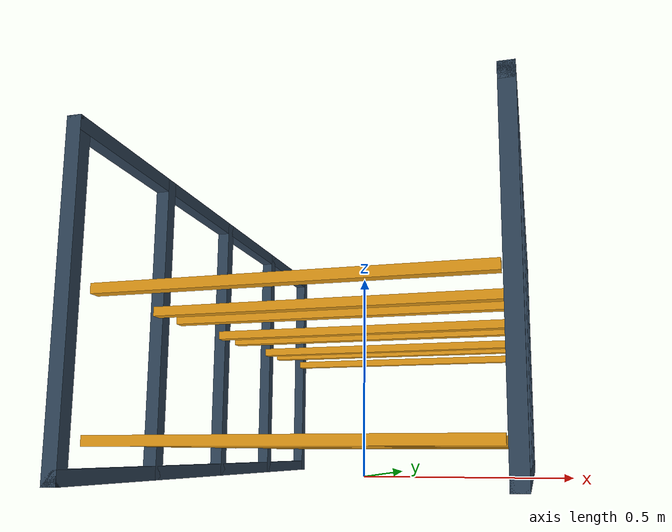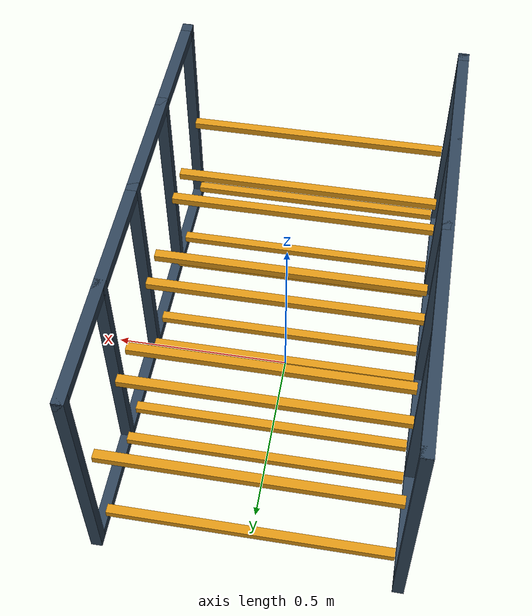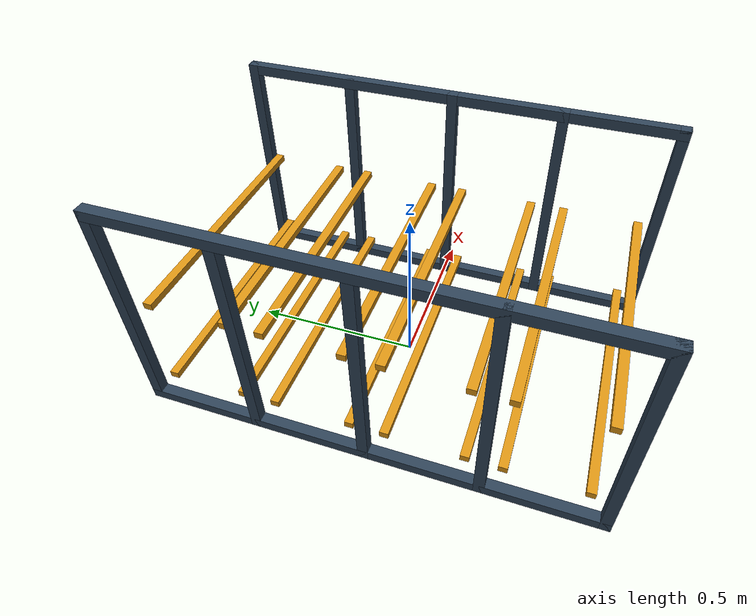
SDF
<?xml version='1.0' encoding='utf-8'?>
<sdf version="1.9">
  <model name="warehouse_rack_4x2_double">
    <static>true</static>
    <link name="rack_frame">
      <collision name="front_post_1_collision">
        <pose>-0.3950 -0.6400 0.3400 0.0000 0.0000 0.0000</pose>
        <geometry>
          <box>
            <size>0.0300 0.0300 0.6800</size>
          </box>
        </geometry>
        <surface>
          <friction>
            <ode>
              <mu>0.8</mu>
              <mu2>0.8</mu2>
            </ode>
          </friction>
        </surface>
      </collision>
      <visual name="front_post_1_visual">
        <pose>-0.3950 -0.6400 0.3400 0.0000 0.0000 0.0000</pose>
        <geometry>
          <box>
            <size>0.0300 0.0300 0.6800</size>
          </box>
        </geometry>
        <material>
          <ambient>0.1800 0.2600 0.3400 1.0000</ambient>
          <diffuse>0.1800 0.2600 0.3400 1.0000</diffuse>
        </material>
      </visual>
      <collision name="rear_post_1_collision">
        <pose>0.3950 -0.6400 0.3400 0.0000 0.0000 0.0000</pose>
        <geometry>
          <box>
            <size>0.0300 0.0300 0.6800</size>
          </box>
        </geometry>
        <surface>
          <friction>
            <ode>
              <mu>0.8</mu>
              <mu2>0.8</mu2>
            </ode>
          </friction>
        </surface>
      </collision>
      <visual name="rear_post_1_visual">
        <pose>0.3950 -0.6400 0.3400 0.0000 0.0000 0.0000</pose>
        <geometry>
          <box>
            <size>0.0300 0.0300 0.6800</size>
          </box>
        </geometry>
        <material>
          <ambient>0.1800 0.2600 0.3400 1.0000</ambient>
          <diffuse>0.1800 0.2600 0.3400 1.0000</diffuse>
        </material>
      </visual>
      <collision name="front_post_2_collision">
        <pose>-0.3950 -0.3200 0.3400 0.0000 0.0000 0.0000</pose>
        <geometry>
          <box>
            <size>0.0300 0.0300 0.6800</size>
          </box>
        </geometry>
        <surface>
          <friction>
            <ode>
              <mu>0.8</mu>
              <mu2>0.8</mu2>
            </ode>
          </friction>
        </surface>
      </collision>
      <visual name="front_post_2_visual">
        <pose>-0.3950 -0.3200 0.3400 0.0000 0.0000 0.0000</pose>
        <geometry>
          <box>
            <size>0.0300 0.0300 0.6800</size>
          </box>
        </geometry>
        <material>
          <ambient>0.1800 0.2600 0.3400 1.0000</ambient>
          <diffuse>0.1800 0.2600 0.3400 1.0000</diffuse>
        </material>
      </visual>
      <collision name="rear_post_2_collision">
        <pose>0.3950 -0.3200 0.3400 0.0000 0.0000 0.0000</pose>
        <geometry>
          <box>
            <size>0.0300 0.0300 0.6800</size>
          </box>
        </geometry>
        <surface>
          <friction>
            <ode>
              <mu>0.8</mu>
              <mu2>0.8</mu2>
            </ode>
          </friction>
        </surface>
      </collision>
      <visual name="rear_post_2_visual">
        <pose>0.3950 -0.3200 0.3400 0.0000 0.0000 0.0000</pose>
        <geometry>
          <box>
            <size>0.0300 0.0300 0.6800</size>
          </box>
        </geometry>
        <material>
          <ambient>0.1800 0.2600 0.3400 1.0000</ambient>
          <diffuse>0.1800 0.2600 0.3400 1.0000</diffuse>
        </material>
      </visual>
      <collision name="front_post_3_collision">
        <pose>-0.3950 0.0000 0.3400 0.0000 0.0000 0.0000</pose>
        <geometry>
          <box>
            <size>0.0300 0.0300 0.6800</size>
          </box>
        </geometry>
        <surface>
          <friction>
            <ode>
              <mu>0.8</mu>
              <mu2>0.8</mu2>
            </ode>
          </friction>
        </surface>
      </collision>
      <visual name="front_post_3_visual">
        <pose>-0.3950 0.0000 0.3400 0.0000 0.0000 0.0000</pose>
        <geometry>
          <box>
            <size>0.0300 0.0300 0.6800</size>
          </box>
        </geometry>
        <material>
          <ambient>0.1800 0.2600 0.3400 1.0000</ambient>
          <diffuse>0.1800 0.2600 0.3400 1.0000</diffuse>
        </material>
      </visual>
      <collision name="rear_post_3_collision">
        <pose>0.3950 0.0000 0.3400 0.0000 0.0000 0.0000</pose>
        <geometry>
          <box>
            <size>0.0300 0.0300 0.6800</size>
          </box>
        </geometry>
        <surface>
          <friction>
            <ode>
              <mu>0.8</mu>
              <mu2>0.8</mu2>
            </ode>
          </friction>
        </surface>
      </collision>
      <visual name="rear_post_3_visual">
        <pose>0.3950 0.0000 0.3400 0.0000 0.0000 0.0000</pose>
        <geometry>
          <box>
            <size>0.0300 0.0300 0.6800</size>
          </box>
        </geometry>
        <material>
          <ambient>0.1800 0.2600 0.3400 1.0000</ambient>
          <diffuse>0.1800 0.2600 0.3400 1.0000</diffuse>
        </material>
      </visual>
      <collision name="front_post_4_collision">
        <pose>-0.3950 0.3200 0.3400 0.0000 0.0000 0.0000</pose>
        <geometry>
          <box>
            <size>0.0300 0.0300 0.6800</size>
          </box>
        </geometry>
        <surface>
          <friction>
            <ode>
              <mu>0.8</mu>
              <mu2>0.8</mu2>
            </ode>
          </friction>
        </surface>
      </collision>
      <visual name="front_post_4_visual">
        <pose>-0.3950 0.3200 0.3400 0.0000 0.0000 0.0000</pose>
        <geometry>
          <box>
            <size>0.0300 0.0300 0.6800</size>
          </box>
        </geometry>
        <material>
          <ambient>0.1800 0.2600 0.3400 1.0000</ambient>
          <diffuse>0.1800 0.2600 0.3400 1.0000</diffuse>
        </material>
      </visual>
      <collision name="rear_post_4_collision">
        <pose>0.3950 0.3200 0.3400 0.0000 0.0000 0.0000</pose>
        <geometry>
          <box>
            <size>0.0300 0.0300 0.6800</size>
          </box>
        </geometry>
        <surface>
          <friction>
            <ode>
              <mu>0.8</mu>
              <mu2>0.8</mu2>
            </ode>
          </friction>
        </surface>
      </collision>
      <visual name="rear_post_4_visual">
        <pose>0.3950 0.3200 0.3400 0.0000 0.0000 0.0000</pose>
        <geometry>
          <box>
            <size>0.0300 0.0300 0.6800</size>
          </box>
        </geometry>
        <material>
          <ambient>0.1800 0.2600 0.3400 1.0000</ambient>
          <diffuse>0.1800 0.2600 0.3400 1.0000</diffuse>
        </material>
      </visual>
      <collision name="front_post_5_collision">
        <pose>-0.3950 0.6400 0.3400 0.0000 0.0000 0.0000</pose>
        <geometry>
          <box>
            <size>0.0300 0.0300 0.6800</size>
          </box>
        </geometry>
        <surface>
          <friction>
            <ode>
              <mu>0.8</mu>
              <mu2>0.8</mu2>
            </ode>
          </friction>
        </surface>
      </collision>
      <visual name="front_post_5_visual">
        <pose>-0.3950 0.6400 0.3400 0.0000 0.0000 0.0000</pose>
        <geometry>
          <box>
            <size>0.0300 0.0300 0.6800</size>
          </box>
        </geometry>
        <material>
          <ambient>0.1800 0.2600 0.3400 1.0000</ambient>
          <diffuse>0.1800 0.2600 0.3400 1.0000</diffuse>
        </material>
      </visual>
      <collision name="rear_post_5_collision">
        <pose>0.3950 0.6400 0.3400 0.0000 0.0000 0.0000</pose>
        <geometry>
          <box>
            <size>0.0300 0.0300 0.6800</size>
          </box>
        </geometry>
        <surface>
          <friction>
            <ode>
              <mu>0.8</mu>
              <mu2>0.8</mu2>
            </ode>
          </friction>
        </surface>
      </collision>
      <visual name="rear_post_5_visual">
        <pose>0.3950 0.6400 0.3400 0.0000 0.0000 0.0000</pose>
        <geometry>
          <box>
            <size>0.0300 0.0300 0.6800</size>
          </box>
        </geometry>
        <material>
          <ambient>0.1800 0.2600 0.3400 1.0000</ambient>
          <diffuse>0.1800 0.2600 0.3400 1.0000</diffuse>
        </material>
      </visual>
      <collision name="front_bottom_crossbeam_collision">
        <pose>-0.3950 0.0000 0.0150 0.0000 0.0000 0.0000</pose>
        <geometry>
          <box>
            <size>0.0300 1.3100 0.0300</size>
          </box>
        </geometry>
        <surface>
          <friction>
            <ode>
              <mu>0.8</mu>
              <mu2>0.8</mu2>
            </ode>
          </friction>
        </surface>
      </collision>
      <visual name="front_bottom_crossbeam_visual">
        <pose>-0.3950 0.0000 0.0150 0.0000 0.0000 0.0000</pose>
        <geometry>
          <box>
            <size>0.0300 1.3100 0.0300</size>
          </box>
        </geometry>
        <material>
          <ambient>0.1800 0.2600 0.3400 1.0000</ambient>
          <diffuse>0.1800 0.2600 0.3400 1.0000</diffuse>
        </material>
      </visual>
      <collision name="front_top_crossbeam_collision">
        <pose>-0.3950 0.0000 0.6650 0.0000 0.0000 0.0000</pose>
        <geometry>
          <box>
            <size>0.0300 1.3100 0.0300</size>
          </box>
        </geometry>
        <surface>
          <friction>
            <ode>
              <mu>0.8</mu>
              <mu2>0.8</mu2>
            </ode>
          </friction>
        </surface>
      </collision>
      <visual name="front_top_crossbeam_visual">
        <pose>-0.3950 0.0000 0.6650 0.0000 0.0000 0.0000</pose>
        <geometry>
          <box>
            <size>0.0300 1.3100 0.0300</size>
          </box>
        </geometry>
        <material>
          <ambient>0.1800 0.2600 0.3400 1.0000</ambient>
          <diffuse>0.1800 0.2600 0.3400 1.0000</diffuse>
        </material>
      </visual>
      <collision name="rear_bottom_crossbeam_collision">
        <pose>0.3950 0.0000 0.0150 0.0000 0.0000 0.0000</pose>
        <geometry>
          <box>
            <size>0.0300 1.3100 0.0300</size>
          </box>
        </geometry>
        <surface>
          <friction>
            <ode>
              <mu>0.8</mu>
              <mu2>0.8</mu2>
            </ode>
          </friction>
        </surface>
      </collision>
      <visual name="rear_bottom_crossbeam_visual">
        <pose>0.3950 0.0000 0.0150 0.0000 0.0000 0.0000</pose>
        <geometry>
          <box>
            <size>0.0300 1.3100 0.0300</size>
          </box>
        </geometry>
        <material>
          <ambient>0.1800 0.2600 0.3400 1.0000</ambient>
          <diffuse>0.1800 0.2600 0.3400 1.0000</diffuse>
        </material>
      </visual>
      <collision name="rear_top_crossbeam_collision">
        <pose>0.3950 0.0000 0.6650 0.0000 0.0000 0.0000</pose>
        <geometry>
          <box>
            <size>0.0300 1.3100 0.0300</size>
          </box>
        </geometry>
        <surface>
          <friction>
            <ode>
              <mu>0.8</mu>
              <mu2>0.8</mu2>
            </ode>
          </friction>
        </surface>
      </collision>
      <visual name="rear_top_crossbeam_visual">
        <pose>0.3950 0.0000 0.6650 0.0000 0.0000 0.0000</pose>
        <geometry>
          <box>
            <size>0.0300 1.3100 0.0300</size>
          </box>
        </geometry>
        <material>
          <ambient>0.1800 0.2600 0.3400 1.0000</ambient>
          <diffuse>0.1800 0.2600 0.3400 1.0000</diffuse>
        </material>
      </visual>
      <collision name="level_1_bay_1_left_rail_collision">
        <pose>0.0000 -0.3700 0.0800 0.0000 0.0000 0.0000</pose>
        <geometry>
          <box>
            <size>0.7500 0.0250 0.0200</size>
          </box>
        </geometry>
        <surface>
          <friction>
            <ode>
              <mu>0.8</mu>
              <mu2>0.8</mu2>
            </ode>
          </friction>
        </surface>
      </collision>
      <visual name="level_1_bay_1_left_rail_visual">
        <pose>0.0000 -0.3700 0.0800 0.0000 0.0000 0.0000</pose>
        <geometry>
          <box>
            <size>0.7500 0.0250 0.0200</size>
          </box>
        </geometry>
        <material>
          <ambient>0.8600 0.5800 0.0800 1.0000</ambient>
          <diffuse>0.8600 0.5800 0.0800 1.0000</diffuse>
        </material>
      </visual>
      <collision name="level_1_bay_1_right_rail_collision">
        <pose>0.0000 -0.5900 0.0800 0.0000 0.0000 0.0000</pose>
        <geometry>
          <box>
            <size>0.7500 0.0250 0.0200</size>
          </box>
        </geometry>
        <surface>
          <friction>
            <ode>
              <mu>0.8</mu>
              <mu2>0.8</mu2>
            </ode>
          </friction>
        </surface>
      </collision>
      <visual name="level_1_bay_1_right_rail_visual">
        <pose>0.0000 -0.5900 0.0800 0.0000 0.0000 0.0000</pose>
        <geometry>
          <box>
            <size>0.7500 0.0250 0.0200</size>
          </box>
        </geometry>
        <material>
          <ambient>0.8600 0.5800 0.0800 1.0000</ambient>
          <diffuse>0.8600 0.5800 0.0800 1.0000</diffuse>
        </material>
      </visual>
      <collision name="level_1_bay_2_left_rail_collision">
        <pose>0.0000 -0.0500 0.0800 0.0000 0.0000 0.0000</pose>
        <geometry>
          <box>
            <size>0.7500 0.0250 0.0200</size>
          </box>
        </geometry>
        <surface>
          <friction>
            <ode>
              <mu>0.8</mu>
              <mu2>0.8</mu2>
            </ode>
          </friction>
        </surface>
      </collision>
      <visual name="level_1_bay_2_left_rail_visual">
        <pose>0.0000 -0.0500 0.0800 0.0000 0.0000 0.0000</pose>
        <geometry>
          <box>
            <size>0.7500 0.0250 0.0200</size>
          </box>
        </geometry>
        <material>
          <ambient>0.8600 0.5800 0.0800 1.0000</ambient>
          <diffuse>0.8600 0.5800 0.0800 1.0000</diffuse>
        </material>
      </visual>
      <collision name="level_1_bay_2_right_rail_collision">
        <pose>0.0000 -0.2700 0.0800 0.0000 0.0000 0.0000</pose>
        <geometry>
          <box>
            <size>0.7500 0.0250 0.0200</size>
          </box>
        </geometry>
        <surface>
          <friction>
            <ode>
              <mu>0.8</mu>
              <mu2>0.8</mu2>
            </ode>
          </friction>
        </surface>
      </collision>
      <visual name="level_1_bay_2_right_rail_visual">
        <pose>0.0000 -0.2700 0.0800 0.0000 0.0000 0.0000</pose>
        <geometry>
          <box>
            <size>0.7500 0.0250 0.0200</size>
          </box>
        </geometry>
        <material>
          <ambient>0.8600 0.5800 0.0800 1.0000</ambient>
          <diffuse>0.8600 0.5800 0.0800 1.0000</diffuse>
        </material>
      </visual>
      <collision name="level_1_bay_3_left_rail_collision">
        <pose>0.0000 0.2700 0.0800 0.0000 0.0000 0.0000</pose>
        <geometry>
          <box>
            <size>0.7500 0.0250 0.0200</size>
          </box>
        </geometry>
        <surface>
          <friction>
            <ode>
              <mu>0.8</mu>
              <mu2>0.8</mu2>
            </ode>
          </friction>
        </surface>
      </collision>
      <visual name="level_1_bay_3_left_rail_visual">
        <pose>0.0000 0.2700 0.0800 0.0000 0.0000 0.0000</pose>
        <geometry>
          <box>
            <size>0.7500 0.0250 0.0200</size>
          </box>
        </geometry>
        <material>
          <ambient>0.8600 0.5800 0.0800 1.0000</ambient>
          <diffuse>0.8600 0.5800 0.0800 1.0000</diffuse>
        </material>
      </visual>
      <collision name="level_1_bay_3_right_rail_collision">
        <pose>0.0000 0.0500 0.0800 0.0000 0.0000 0.0000</pose>
        <geometry>
          <box>
            <size>0.7500 0.0250 0.0200</size>
          </box>
        </geometry>
        <surface>
          <friction>
            <ode>
              <mu>0.8</mu>
              <mu2>0.8</mu2>
            </ode>
          </friction>
        </surface>
      </collision>
      <visual name="level_1_bay_3_right_rail_visual">
        <pose>0.0000 0.0500 0.0800 0.0000 0.0000 0.0000</pose>
        <geometry>
          <box>
            <size>0.7500 0.0250 0.0200</size>
          </box>
        </geometry>
        <material>
          <ambient>0.8600 0.5800 0.0800 1.0000</ambient>
          <diffuse>0.8600 0.5800 0.0800 1.0000</diffuse>
        </material>
      </visual>
      <collision name="level_1_bay_4_left_rail_collision">
        <pose>0.0000 0.5900 0.0800 0.0000 0.0000 0.0000</pose>
        <geometry>
          <box>
            <size>0.7500 0.0250 0.0200</size>
          </box>
        </geometry>
        <surface>
          <friction>
            <ode>
              <mu>0.8</mu>
              <mu2>0.8</mu2>
            </ode>
          </friction>
        </surface>
      </collision>
      <visual name="level_1_bay_4_left_rail_visual">
        <pose>0.0000 0.5900 0.0800 0.0000 0.0000 0.0000</pose>
        <geometry>
          <box>
            <size>0.7500 0.0250 0.0200</size>
          </box>
        </geometry>
        <material>
          <ambient>0.8600 0.5800 0.0800 1.0000</ambient>
          <diffuse>0.8600 0.5800 0.0800 1.0000</diffuse>
        </material>
      </visual>
      <collision name="level_1_bay_4_right_rail_collision">
        <pose>0.0000 0.3700 0.0800 0.0000 0.0000 0.0000</pose>
        <geometry>
          <box>
            <size>0.7500 0.0250 0.0200</size>
          </box>
        </geometry>
        <surface>
          <friction>
            <ode>
              <mu>0.8</mu>
              <mu2>0.8</mu2>
            </ode>
          </friction>
        </surface>
      </collision>
      <visual name="level_1_bay_4_right_rail_visual">
        <pose>0.0000 0.3700 0.0800 0.0000 0.0000 0.0000</pose>
        <geometry>
          <box>
            <size>0.7500 0.0250 0.0200</size>
          </box>
        </geometry>
        <material>
          <ambient>0.8600 0.5800 0.0800 1.0000</ambient>
          <diffuse>0.8600 0.5800 0.0800 1.0000</diffuse>
        </material>
      </visual>
      <collision name="level_2_bay_1_left_rail_collision">
        <pose>0.0000 -0.3700 0.3600 0.0000 0.0000 0.0000</pose>
        <geometry>
          <box>
            <size>0.7500 0.0250 0.0200</size>
          </box>
        </geometry>
        <surface>
          <friction>
            <ode>
              <mu>0.8</mu>
              <mu2>0.8</mu2>
            </ode>
          </friction>
        </surface>
      </collision>
      <visual name="level_2_bay_1_left_rail_visual">
        <pose>0.0000 -0.3700 0.3600 0.0000 0.0000 0.0000</pose>
        <geometry>
          <box>
            <size>0.7500 0.0250 0.0200</size>
          </box>
        </geometry>
        <material>
          <ambient>0.8600 0.5800 0.0800 1.0000</ambient>
          <diffuse>0.8600 0.5800 0.0800 1.0000</diffuse>
        </material>
      </visual>
      <collision name="level_2_bay_1_right_rail_collision">
        <pose>0.0000 -0.5900 0.3600 0.0000 0.0000 0.0000</pose>
        <geometry>
          <box>
            <size>0.7500 0.0250 0.0200</size>
          </box>
        </geometry>
        <surface>
          <friction>
            <ode>
              <mu>0.8</mu>
              <mu2>0.8</mu2>
            </ode>
          </friction>
        </surface>
      </collision>
      <visual name="level_2_bay_1_right_rail_visual">
        <pose>0.0000 -0.5900 0.3600 0.0000 0.0000 0.0000</pose>
        <geometry>
          <box>
            <size>0.7500 0.0250 0.0200</size>
          </box>
        </geometry>
        <material>
          <ambient>0.8600 0.5800 0.0800 1.0000</ambient>
          <diffuse>0.8600 0.5800 0.0800 1.0000</diffuse>
        </material>
      </visual>
      <collision name="level_2_bay_2_left_rail_collision">
        <pose>0.0000 -0.0500 0.3600 0.0000 0.0000 0.0000</pose>
        <geometry>
          <box>
            <size>0.7500 0.0250 0.0200</size>
          </box>
        </geometry>
        <surface>
          <friction>
            <ode>
              <mu>0.8</mu>
              <mu2>0.8</mu2>
            </ode>
          </friction>
        </surface>
      </collision>
      <visual name="level_2_bay_2_left_rail_visual">
        <pose>0.0000 -0.0500 0.3600 0.0000 0.0000 0.0000</pose>
        <geometry>
          <box>
            <size>0.7500 0.0250 0.0200</size>
          </box>
        </geometry>
        <material>
          <ambient>0.8600 0.5800 0.0800 1.0000</ambient>
          <diffuse>0.8600 0.5800 0.0800 1.0000</diffuse>
        </material>
      </visual>
      <collision name="level_2_bay_2_right_rail_collision">
        <pose>0.0000 -0.2700 0.3600 0.0000 0.0000 0.0000</pose>
        <geometry>
          <box>
            <size>0.7500 0.0250 0.0200</size>
          </box>
        </geometry>
        <surface>
          <friction>
            <ode>
              <mu>0.8</mu>
              <mu2>0.8</mu2>
            </ode>
          </friction>
        </surface>
      </collision>
      <visual name="level_2_bay_2_right_rail_visual">
        <pose>0.0000 -0.2700 0.3600 0.0000 0.0000 0.0000</pose>
        <geometry>
          <box>
            <size>0.7500 0.0250 0.0200</size>
          </box>
        </geometry>
        <material>
          <ambient>0.8600 0.5800 0.0800 1.0000</ambient>
          <diffuse>0.8600 0.5800 0.0800 1.0000</diffuse>
        </material>
      </visual>
      <collision name="level_2_bay_3_left_rail_collision">
        <pose>0.0000 0.2700 0.3600 0.0000 0.0000 0.0000</pose>
        <geometry>
          <box>
            <size>0.7500 0.0250 0.0200</size>
          </box>
        </geometry>
        <surface>
          <friction>
            <ode>
              <mu>0.8</mu>
              <mu2>0.8</mu2>
            </ode>
          </friction>
        </surface>
      </collision>
      <visual name="level_2_bay_3_left_rail_visual">
        <pose>0.0000 0.2700 0.3600 0.0000 0.0000 0.0000</pose>
        <geometry>
          <box>
            <size>0.7500 0.0250 0.0200</size>
          </box>
        </geometry>
        <material>
          <ambient>0.8600 0.5800 0.0800 1.0000</ambient>
          <diffuse>0.8600 0.5800 0.0800 1.0000</diffuse>
        </material>
      </visual>
      <collision name="level_2_bay_3_right_rail_collision">
        <pose>0.0000 0.0500 0.3600 0.0000 0.0000 0.0000</pose>
        <geometry>
          <box>
            <size>0.7500 0.0250 0.0200</size>
          </box>
        </geometry>
        <surface>
          <friction>
            <ode>
              <mu>0.8</mu>
              <mu2>0.8</mu2>
            </ode>
          </friction>
        </surface>
      </collision>
      <visual name="level_2_bay_3_right_rail_visual">
        <pose>0.0000 0.0500 0.3600 0.0000 0.0000 0.0000</pose>
        <geometry>
          <box>
            <size>0.7500 0.0250 0.0200</size>
          </box>
        </geometry>
        <material>
          <ambient>0.8600 0.5800 0.0800 1.0000</ambient>
          <diffuse>0.8600 0.5800 0.0800 1.0000</diffuse>
        </material>
      </visual>
      <collision name="level_2_bay_4_left_rail_collision">
        <pose>0.0000 0.5900 0.3600 0.0000 0.0000 0.0000</pose>
        <geometry>
          <box>
            <size>0.7500 0.0250 0.0200</size>
          </box>
        </geometry>
        <surface>
          <friction>
            <ode>
              <mu>0.8</mu>
              <mu2>0.8</mu2>
            </ode>
          </friction>
        </surface>
      </collision>
      <visual name="level_2_bay_4_left_rail_visual">
        <pose>0.0000 0.5900 0.3600 0.0000 0.0000 0.0000</pose>
        <geometry>
          <box>
            <size>0.7500 0.0250 0.0200</size>
          </box>
        </geometry>
        <material>
          <ambient>0.8600 0.5800 0.0800 1.0000</ambient>
          <diffuse>0.8600 0.5800 0.0800 1.0000</diffuse>
        </material>
      </visual>
      <collision name="level_2_bay_4_right_rail_collision">
        <pose>0.0000 0.3700 0.3600 0.0000 0.0000 0.0000</pose>
        <geometry>
          <box>
            <size>0.7500 0.0250 0.0200</size>
          </box>
        </geometry>
        <surface>
          <friction>
            <ode>
              <mu>0.8</mu>
              <mu2>0.8</mu2>
            </ode>
          </friction>
        </surface>
      </collision>
      <visual name="level_2_bay_4_right_rail_visual">
        <pose>0.0000 0.3700 0.3600 0.0000 0.0000 0.0000</pose>
        <geometry>
          <box>
            <size>0.7500 0.0250 0.0200</size>
          </box>
        </geometry>
        <material>
          <ambient>0.8600 0.5800 0.0800 1.0000</ambient>
          <diffuse>0.8600 0.5800 0.0800 1.0000</diffuse>
        </material>
      </visual>
    </link>
  </model>
</sdf>
